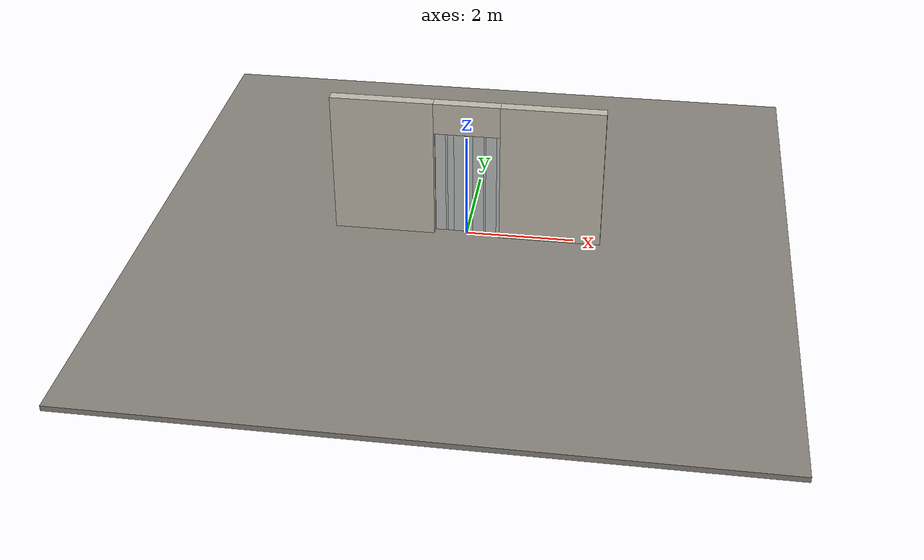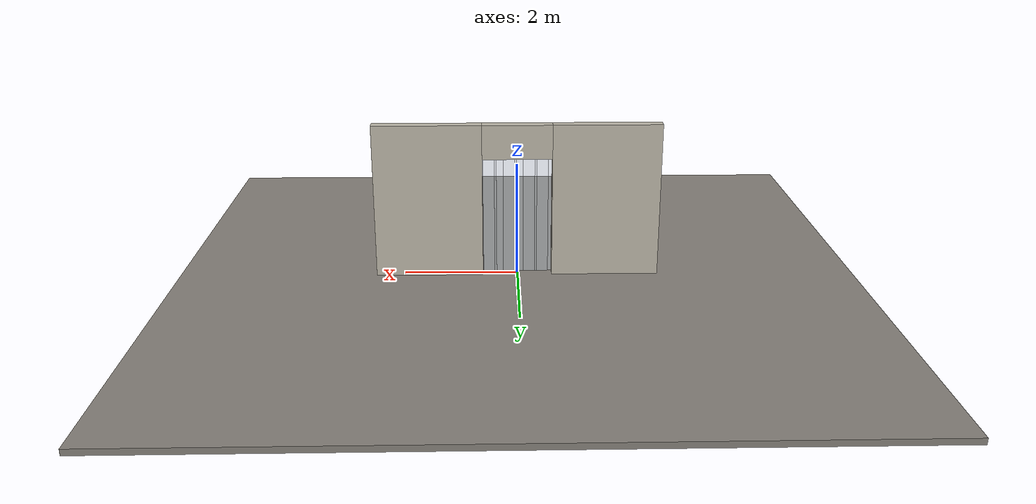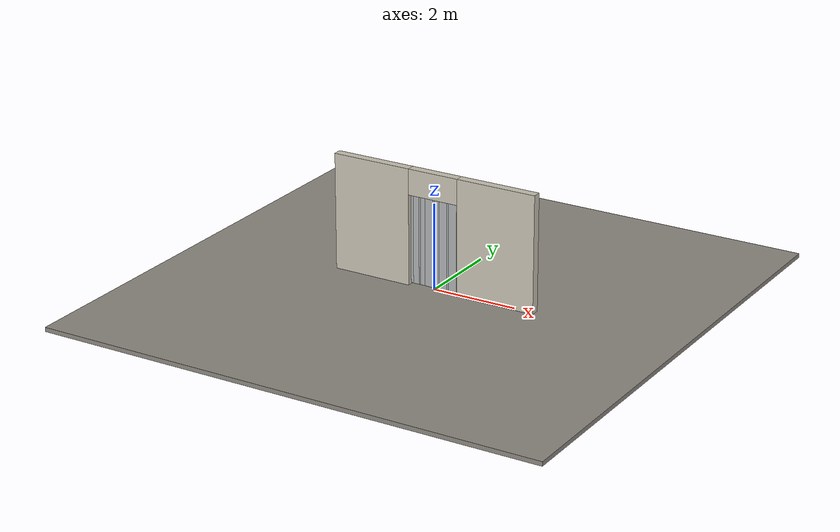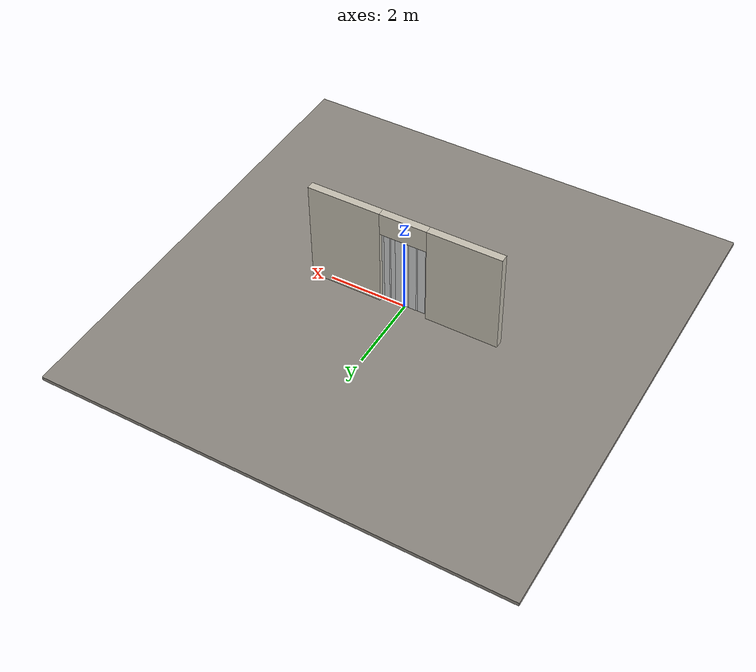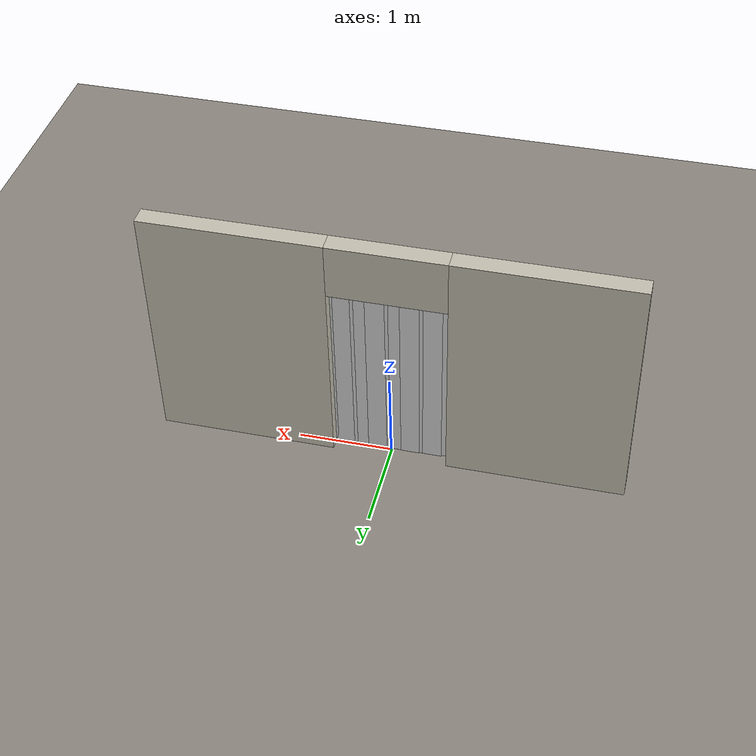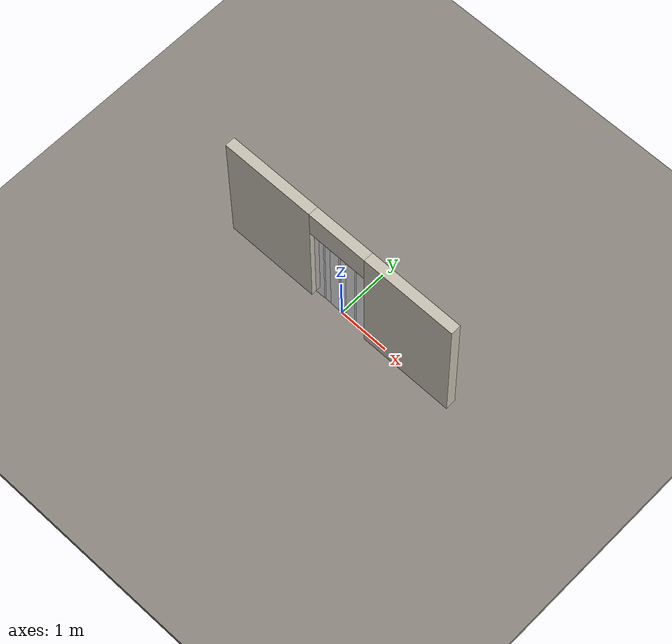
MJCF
<?xml version="1.0" ?>
<mujoco model="db0628_strip_curtain_simple">
  <compiler angle="radian" meshdir="../../hardware" texturedir="../../textures" autolimits="true" inertiafromgeom="false"/>
  <option timestep="0.002" integrator="implicitfast" cone="elliptic" impratio="10" noslip_iterations="3">
    <flag multiccd="enable"/>
  </option>
  <size memory="16M"/>
  <default>
    <geom condim="4" solref="0.005 1" solimp="0.95 0.99 0.001"/>
    <joint solreflimit="0.005 1" solimplimit="0.95 0.99 0.001"/>
    <tendon solreflimit="0.005 1"/>
    <equality solref="0.002 1"/>
  </default>
  <visual>
    <headlight ambient="0.4 0.4 0.4" diffuse="0.7 0.7 0.7" specular="0.2 0.2 0.2"/>
    <quality shadowsize="4096"/>
    <map znear="0.01" zfar="60"/>
  </visual>
  <asset>
    <material name="mat_floor" rgba="0.55 0.53 0.5 1" specular="0.2" shininess="0.15" reflectance="0"/>
    <material name="mat_wall" rgba="0.78 0.76 0.7 1" specular="0.2" shininess="0.1" reflectance="0"/>
    <material name="mat_frame" rgba="0.75 0.76 0.77 1" specular="0.8" shininess="0.65" reflectance="0.4"/>
    <material name="mat_strip" rgba="0.85 0.9 0.95 0.45" specular="0.2" shininess="0.7" reflectance="0.1"/>
    <texture name="skybox" type="skybox" builtin="gradient" rgb1="0.6 0.7 0.85" rgb2="0.9 0.92 0.95" width="256" height="256"/>
  </asset>
  <worldbody>
    <light name="sun" pos="1.5 -2.5 4" dir="-0.3 0.5 -0.8" directional="true" diffuse="0.8 0.8 0.8" specular="0.3 0.3 0.3" castshadow="true"/>
    <light name="fill" pos="-1.5 2.5 3" dir="0.3 -0.5 -0.7" directional="true" diffuse="0.35 0.35 0.4" castshadow="false"/>
    <camera name="robot_view" pos="0 -2.6125 1.7915" xyaxes="1 0 0 0 0.26963 0.962964" fovy="52"/>
    <camera name="far_view" pos="0 2.6125 1.7915" xyaxes="-1 0 0 0 -0.26963 0.962964" fovy="52"/>
    <camera name="iso" pos="1.9855 -2.1945 2.2095" xyaxes="0.741536 0.670913 0 -0.242917 0.268487 0.932151" fovy="46"/>
    <camera name="detail_handle" pos="0.48 -0.8 1.28" xyaxes="0.97561 0.219512 0 -0.070934 0.315262 0.94635" fovy="38"/>
    <geom name="floor" type="box" size="6 6 0.05" pos="0 0 -0.05" material="mat_floor" group="0" contype="1" conaffinity="1" friction="0.8 0.005 0.0001" density="2400"/>
    <geom name="wall_left" type="box" size="0.945 0.1 1.36" pos="-1.555 0 1.36" material="mat_wall" group="0" contype="1" conaffinity="1" friction="0.6 0.005 0.0001" density="800"/>
    <geom name="wall_right" type="box" size="0.945 0.1 1.36" pos="1.555 0 1.36" material="mat_wall" group="0" contype="1" conaffinity="1" friction="0.6 0.005 0.0001" density="800"/>
    <geom name="wall_header" type="box" size="0.61 0.1 0.3" pos="0 0 2.42" material="mat_wall" group="0" contype="1" conaffinity="1" friction="0.6 0.005 0.0001" density="800"/>
    <geom name="hanger_rail" type="box" size="0.66 0.03 0.03" pos="0 0 2.15" material="mat_frame" group="0" contype="1" conaffinity="1" friction="0.6 0.005 0.0001" density="7900"/>
    <geom name="strip_0_hanger" type="box" size="0.1 0.0055 0.0145" pos="-0.5 -0.0085 2.1275" material="mat_frame" group="1" contype="0" conaffinity="0" density="7900"/>
    <geom name="strip_1_hanger" type="box" size="0.1 0.0055 0.0145" pos="-0.441176 0.0035 2.1275" material="mat_frame" group="1" contype="0" conaffinity="0" density="7900"/>
    <geom name="strip_2_hanger" type="box" size="0.1 0.0055 0.0145" pos="-0.382353 0.0015 2.1275" material="mat_frame" group="1" contype="0" conaffinity="0" density="7900"/>
    <geom name="strip_3_hanger" type="box" size="0.1 0.0055 0.0145" pos="-0.323529 -0.0015 2.1275" material="mat_frame" group="1" contype="0" conaffinity="0" density="7900"/>
    <geom name="strip_4_hanger" type="box" size="0.1 0.0055 0.0145" pos="-0.264706 -0.0035 2.1275" material="mat_frame" group="1" contype="0" conaffinity="0" density="7900"/>
    <geom name="strip_5_hanger" type="box" size="0.1 0.0055 0.0145" pos="-0.205882 0.0085 2.1275" material="mat_frame" group="1" contype="0" conaffinity="0" density="7900"/>
    <geom name="strip_6_hanger" type="box" size="0.1 0.0055 0.0145" pos="-0.147059 -0.0085 2.1275" material="mat_frame" group="1" contype="0" conaffinity="0" density="7900"/>
    <geom name="strip_7_hanger" type="box" size="0.1 0.0055 0.0145" pos="-0.088235 0.0035 2.1275" material="mat_frame" group="1" contype="0" conaffinity="0" density="7900"/>
    <geom name="strip_8_hanger" type="box" size="0.1 0.0055 0.0145" pos="-0.029412 0.0015 2.1275" material="mat_frame" group="1" contype="0" conaffinity="0" density="7900"/>
    <geom name="strip_9_hanger" type="box" size="0.1 0.0055 0.0145" pos="0.029412 -0.0015 2.1275" material="mat_frame" group="1" contype="0" conaffinity="0" density="7900"/>
    <geom name="strip_10_hanger" type="box" size="0.1 0.0055 0.0145" pos="0.088235 -0.0035 2.1275" material="mat_frame" group="1" contype="0" conaffinity="0" density="7900"/>
    <geom name="strip_11_hanger" type="box" size="0.1 0.0055 0.0145" pos="0.147059 0.0085 2.1275" material="mat_frame" group="1" contype="0" conaffinity="0" density="7900"/>
    <geom name="strip_12_hanger" type="box" size="0.1 0.0055 0.0145" pos="0.205882 -0.0085 2.1275" material="mat_frame" group="1" contype="0" conaffinity="0" density="7900"/>
    <geom name="strip_13_hanger" type="box" size="0.1 0.0055 0.0145" pos="0.264706 0.0035 2.1275" material="mat_frame" group="1" contype="0" conaffinity="0" density="7900"/>
    <geom name="strip_14_hanger" type="box" size="0.1 0.0055 0.0145" pos="0.323529 0.0015 2.1275" material="mat_frame" group="1" contype="0" conaffinity="0" density="7900"/>
    <geom name="strip_15_hanger" type="box" size="0.1 0.0055 0.0145" pos="0.382353 -0.0015 2.1275" material="mat_frame" group="1" contype="0" conaffinity="0" density="7900"/>
    <geom name="strip_16_hanger" type="box" size="0.1 0.0055 0.0145" pos="0.441176 -0.0035 2.1275" material="mat_frame" group="1" contype="0" conaffinity="0" density="7900"/>
    <geom name="strip_17_hanger" type="box" size="0.1 0.0055 0.0145" pos="0.5 0.0085 2.1275" material="mat_frame" group="1" contype="0" conaffinity="0" density="7900"/>
    <site name="approach_point" pos="0 -1.5 0" quat="1 0 0 0" size="0.05" rgba="0.2 0.9 0.2 0.5" group="4"/>
    <site name="goal_point" pos="0 1.5 0" quat="1 0 0 0" size="0.05" rgba="0.2 0.9 0.2 0.5" group="4"/>
    <site name="door_plane_center" pos="0 0 1.06" quat="1 0 0 0" size="0.02" rgba="0.2 0.9 0.2 0.5" group="4"/>
    <body name="strip_0" pos="-0.5 -0.0085 2.114">
      <inertial pos="0 0 -1.04" mass="1.621111" quat="-0.5 0.5 0.5 0.5" diaginertia="0.00540492 0.584465808 0.589868296"/>
      <joint name="strip_0_hinge" type="hinge" axis="1 0 0" limited="true" range="-1.48353 1.48353" damping="0.05" frictionloss="0.02" armature="0.005"/>
      <geom name="strip_0_geom" type="box" size="0.1 0.0015 1.04" pos="0 0 -1.04" material="mat_strip" group="0" contype="1" conaffinity="1" friction="0.6 0.005 0.0001" density="1250"/>
    </body>
    <body name="strip_1" pos="-0.441176 0.0035 2.114">
      <inertial pos="0 0 -1.04" mass="1.621111" quat="-0.5 0.5 0.5 0.5" diaginertia="0.00540492 0.584465808 0.589868296"/>
      <joint name="strip_1_hinge" type="hinge" axis="1 0 0" limited="true" range="-1.48353 1.48353" damping="0.05" frictionloss="0.02" armature="0.005"/>
      <geom name="strip_1_geom" type="box" size="0.1 0.0015 1.04" pos="0 0 -1.04" material="mat_strip" group="0" contype="1" conaffinity="1" friction="0.6 0.005 0.0001" density="1250"/>
    </body>
    <body name="strip_2" pos="-0.382353 0.0015 2.114">
      <inertial pos="0 0 -1.04" mass="1.621111" quat="-0.5 0.5 0.5 0.5" diaginertia="0.00540492 0.584465808 0.589868296"/>
      <joint name="strip_2_hinge" type="hinge" axis="1 0 0" limited="true" range="-1.48353 1.48353" damping="0.05" frictionloss="0.02" armature="0.005"/>
      <geom name="strip_2_geom" type="box" size="0.1 0.0015 1.04" pos="0 0 -1.04" material="mat_strip" group="0" contype="1" conaffinity="1" friction="0.6 0.005 0.0001" density="1250"/>
    </body>
    <body name="strip_3" pos="-0.323529 -0.0015 2.114">
      <inertial pos="0 0 -1.04" mass="1.621111" quat="-0.5 0.5 0.5 0.5" diaginertia="0.00540492 0.584465808 0.589868296"/>
      <joint name="strip_3_hinge" type="hinge" axis="1 0 0" limited="true" range="-1.48353 1.48353" damping="0.05" frictionloss="0.02" armature="0.005"/>
      <geom name="strip_3_geom" type="box" size="0.1 0.0015 1.04" pos="0 0 -1.04" material="mat_strip" group="0" contype="1" conaffinity="1" friction="0.6 0.005 0.0001" density="1250"/>
    </body>
    <body name="strip_4" pos="-0.264706 -0.0035 2.114">
      <inertial pos="0 0 -1.04" mass="1.621111" quat="-0.5 0.5 0.5 0.5" diaginertia="0.00540492 0.584465808 0.589868296"/>
      <joint name="strip_4_hinge" type="hinge" axis="1 0 0" limited="true" range="-1.48353 1.48353" damping="0.05" frictionloss="0.02" armature="0.005"/>
      <geom name="strip_4_geom" type="box" size="0.1 0.0015 1.04" pos="0 0 -1.04" material="mat_strip" group="0" contype="1" conaffinity="1" friction="0.6 0.005 0.0001" density="1250"/>
    </body>
    <body name="strip_5" pos="-0.205882 0.0085 2.114">
      <inertial pos="0 0 -1.04" mass="1.621111" quat="-0.5 0.5 0.5 0.5" diaginertia="0.00540492 0.584465808 0.589868296"/>
      <joint name="strip_5_hinge" type="hinge" axis="1 0 0" limited="true" range="-1.48353 1.48353" damping="0.05" frictionloss="0.02" armature="0.005"/>
      <geom name="strip_5_geom" type="box" size="0.1 0.0015 1.04" pos="0 0 -1.04" material="mat_strip" group="0" contype="1" conaffinity="1" friction="0.6 0.005 0.0001" density="1250"/>
    </body>
    <body name="strip_6" pos="-0.147059 -0.0085 2.114">
      <inertial pos="0 0 -1.04" mass="1.621111" quat="-0.5 0.5 0.5 0.5" diaginertia="0.00540492 0.584465808 0.589868296"/>
      <joint name="strip_6_hinge" type="hinge" axis="1 0 0" limited="true" range="-1.48353 1.48353" damping="0.05" frictionloss="0.02" armature="0.005"/>
      <geom name="strip_6_geom" type="box" size="0.1 0.0015 1.04" pos="0 0 -1.04" material="mat_strip" group="0" contype="1" conaffinity="1" friction="0.6 0.005 0.0001" density="1250"/>
    </body>
    <body name="strip_7" pos="-0.088235 0.0035 2.114">
      <inertial pos="0 0 -1.04" mass="1.621111" quat="-0.5 0.5 0.5 0.5" diaginertia="0.00540492 0.584465808 0.589868296"/>
      <joint name="strip_7_hinge" type="hinge" axis="1 0 0" limited="true" range="-1.48353 1.48353" damping="0.05" frictionloss="0.02" armature="0.005"/>
      <geom name="strip_7_geom" type="box" size="0.1 0.0015 1.04" pos="0 0 -1.04" material="mat_strip" group="0" contype="1" conaffinity="1" friction="0.6 0.005 0.0001" density="1250"/>
    </body>
    <body name="strip_8" pos="-0.029412 0.0015 2.114">
      <inertial pos="0 0 -1.04" mass="1.621111" quat="-0.5 0.5 0.5 0.5" diaginertia="0.00540492 0.584465808 0.589868296"/>
      <joint name="strip_8_hinge" type="hinge" axis="1 0 0" limited="true" range="-1.48353 1.48353" damping="0.05" frictionloss="0.02" armature="0.005"/>
      <geom name="strip_8_geom" type="box" size="0.1 0.0015 1.04" pos="0 0 -1.04" material="mat_strip" group="0" contype="1" conaffinity="1" friction="0.6 0.005 0.0001" density="1250"/>
    </body>
    <body name="strip_9" pos="0.029412 -0.0015 2.114">
      <inertial pos="0 0 -1.04" mass="1.621111" quat="-0.5 0.5 0.5 0.5" diaginertia="0.00540492 0.584465808 0.589868296"/>
      <joint name="strip_9_hinge" type="hinge" axis="1 0 0" limited="true" range="-1.48353 1.48353" damping="0.05" frictionloss="0.02" armature="0.02"/>
      <geom name="strip_9_geom" type="box" size="0.1 0.0015 1.04" pos="0 0 -1.04" material="mat_strip" group="0" contype="1" conaffinity="1" friction="0.6 0.005 0.0001" density="1250"/>
    </body>
    <body name="strip_10" pos="0.088235 -0.0035 2.114">
      <inertial pos="0 0 -1.04" mass="1.621111" quat="-0.5 0.5 0.5 0.5" diaginertia="0.00540492 0.584465808 0.589868296"/>
      <joint name="strip_10_hinge" type="hinge" axis="1 0 0" limited="true" range="-1.48353 1.48353" damping="0.05" frictionloss="0.02" armature="0.005"/>
      <geom name="strip_10_geom" type="box" size="0.1 0.0015 1.04" pos="0 0 -1.04" material="mat_strip" group="0" contype="1" conaffinity="1" friction="0.6 0.005 0.0001" density="1250"/>
    </body>
    <body name="strip_11" pos="0.147059 0.0085 2.114">
      <inertial pos="0 0 -1.04" mass="1.621111" quat="-0.5 0.5 0.5 0.5" diaginertia="0.00540492 0.584465808 0.589868296"/>
      <joint name="strip_11_hinge" type="hinge" axis="1 0 0" limited="true" range="-1.48353 1.48353" damping="0.05" frictionloss="0.02" armature="0.005"/>
      <geom name="strip_11_geom" type="box" size="0.1 0.0015 1.04" pos="0 0 -1.04" material="mat_strip" group="0" contype="1" conaffinity="1" friction="0.6 0.005 0.0001" density="1250"/>
    </body>
    <body name="strip_12" pos="0.205882 -0.0085 2.114">
      <inertial pos="0 0 -1.04" mass="1.621111" quat="-0.5 0.5 0.5 0.5" diaginertia="0.00540492 0.584465808 0.589868296"/>
      <joint name="strip_12_hinge" type="hinge" axis="1 0 0" limited="true" range="-1.48353 1.48353" damping="0.05" frictionloss="0.02" armature="0.005"/>
      <geom name="strip_12_geom" type="box" size="0.1 0.0015 1.04" pos="0 0 -1.04" material="mat_strip" group="0" contype="1" conaffinity="1" friction="0.6 0.005 0.0001" density="1250"/>
    </body>
    <body name="strip_13" pos="0.264706 0.0035 2.114">
      <inertial pos="0 0 -1.04" mass="1.621111" quat="-0.5 0.5 0.5 0.5" diaginertia="0.00540492 0.584465808 0.589868296"/>
      <joint name="strip_13_hinge" type="hinge" axis="1 0 0" limited="true" range="-1.48353 1.48353" damping="0.05" frictionloss="0.02" armature="0.005"/>
      <geom name="strip_13_geom" type="box" size="0.1 0.0015 1.04" pos="0 0 -1.04" material="mat_strip" group="0" contype="1" conaffinity="1" friction="0.6 0.005 0.0001" density="1250"/>
    </body>
    <body name="strip_14" pos="0.323529 0.0015 2.114">
      <inertial pos="0 0 -1.04" mass="1.621111" quat="-0.5 0.5 0.5 0.5" diaginertia="0.00540492 0.584465808 0.589868296"/>
      <joint name="strip_14_hinge" type="hinge" axis="1 0 0" limited="true" range="-1.48353 1.48353" damping="0.05" frictionloss="0.02" armature="0.005"/>
      <geom name="strip_14_geom" type="box" size="0.1 0.0015 1.04" pos="0 0 -1.04" material="mat_strip" group="0" contype="1" conaffinity="1" friction="0.6 0.005 0.0001" density="1250"/>
    </body>
    <body name="strip_15" pos="0.382353 -0.0015 2.114">
      <inertial pos="0 0 -1.04" mass="1.621111" quat="-0.5 0.5 0.5 0.5" diaginertia="0.00540492 0.584465808 0.589868296"/>
      <joint name="strip_15_hinge" type="hinge" axis="1 0 0" limited="true" range="-1.48353 1.48353" damping="0.05" frictionloss="0.02" armature="0.005"/>
      <geom name="strip_15_geom" type="box" size="0.1 0.0015 1.04" pos="0 0 -1.04" material="mat_strip" group="0" contype="1" conaffinity="1" friction="0.6 0.005 0.0001" density="1250"/>
    </body>
    <body name="strip_16" pos="0.441176 -0.0035 2.114">
      <inertial pos="0 0 -1.04" mass="1.621111" quat="-0.5 0.5 0.5 0.5" diaginertia="0.00540492 0.584465808 0.589868296"/>
      <joint name="strip_16_hinge" type="hinge" axis="1 0 0" limited="true" range="-1.48353 1.48353" damping="0.05" frictionloss="0.02" armature="0.005"/>
      <geom name="strip_16_geom" type="box" size="0.1 0.0015 1.04" pos="0 0 -1.04" material="mat_strip" group="0" contype="1" conaffinity="1" friction="0.6 0.005 0.0001" density="1250"/>
    </body>
    <body name="strip_17" pos="0.5 0.0085 2.114">
      <inertial pos="0 0 -1.04" mass="1.621111" quat="-0.5 0.5 0.5 0.5" diaginertia="0.00540492 0.584465808 0.589868296"/>
      <joint name="strip_17_hinge" type="hinge" axis="1 0 0" limited="true" range="-1.48353 1.48353" damping="0.05" frictionloss="0.02" armature="0.005"/>
      <geom name="strip_17_geom" type="box" size="0.1 0.0015 1.04" pos="0 0 -1.04" material="mat_strip" group="0" contype="1" conaffinity="1" friction="0.6 0.005 0.0001" density="1250"/>
    </body>
  </worldbody>
  <contact>
    <exclude body1="strip_1" body2="strip_0"/>
    <exclude body1="strip_2" body2="strip_1"/>
    <exclude body1="strip_3" body2="strip_2"/>
    <exclude body1="strip_4" body2="strip_3"/>
    <exclude body1="strip_5" body2="strip_4"/>
    <exclude body1="strip_6" body2="strip_5"/>
    <exclude body1="strip_7" body2="strip_6"/>
    <exclude body1="strip_8" body2="strip_7"/>
    <exclude body1="strip_9" body2="strip_8"/>
    <exclude body1="strip_10" body2="strip_9"/>
    <exclude body1="strip_11" body2="strip_10"/>
    <exclude body1="strip_12" body2="strip_11"/>
    <exclude body1="strip_13" body2="strip_12"/>
    <exclude body1="strip_14" body2="strip_13"/>
    <exclude body1="strip_15" body2="strip_14"/>
    <exclude body1="strip_16" body2="strip_15"/>
    <exclude body1="strip_17" body2="strip_16"/>
  </contact>
  <sensor>
    <jointpos name="strip_0_hinge_pos" joint="strip_0_hinge"/>
    <jointvel name="strip_0_hinge_vel" joint="strip_0_hinge"/>
    <jointpos name="strip_1_hinge_pos" joint="strip_1_hinge"/>
    <jointvel name="strip_1_hinge_vel" joint="strip_1_hinge"/>
    <jointpos name="strip_2_hinge_pos" joint="strip_2_hinge"/>
    <jointvel name="strip_2_hinge_vel" joint="strip_2_hinge"/>
    <jointpos name="strip_3_hinge_pos" joint="strip_3_hinge"/>
    <jointvel name="strip_3_hinge_vel" joint="strip_3_hinge"/>
    <jointpos name="strip_4_hinge_pos" joint="strip_4_hinge"/>
    <jointvel name="strip_4_hinge_vel" joint="strip_4_hinge"/>
    <jointpos name="strip_5_hinge_pos" joint="strip_5_hinge"/>
    <jointvel name="strip_5_hinge_vel" joint="strip_5_hinge"/>
    <jointpos name="strip_6_hinge_pos" joint="strip_6_hinge"/>
    <jointvel name="strip_6_hinge_vel" joint="strip_6_hinge"/>
    <jointpos name="strip_7_hinge_pos" joint="strip_7_hinge"/>
    <jointvel name="strip_7_hinge_vel" joint="strip_7_hinge"/>
    <jointpos name="strip_8_hinge_pos" joint="strip_8_hinge"/>
    <jointvel name="strip_8_hinge_vel" joint="strip_8_hinge"/>
    <jointpos name="strip_9_hinge_pos" joint="strip_9_hinge"/>
    <jointvel name="strip_9_hinge_vel" joint="strip_9_hinge"/>
    <jointpos name="strip_10_hinge_pos" joint="strip_10_hinge"/>
    <jointvel name="strip_10_hinge_vel" joint="strip_10_hinge"/>
    <jointpos name="strip_11_hinge_pos" joint="strip_11_hinge"/>
    <jointvel name="strip_11_hinge_vel" joint="strip_11_hinge"/>
    <jointpos name="strip_12_hinge_pos" joint="strip_12_hinge"/>
    <jointvel name="strip_12_hinge_vel" joint="strip_12_hinge"/>
    <jointpos name="strip_13_hinge_pos" joint="strip_13_hinge"/>
    <jointvel name="strip_13_hinge_vel" joint="strip_13_hinge"/>
    <jointpos name="strip_14_hinge_pos" joint="strip_14_hinge"/>
    <jointvel name="strip_14_hinge_vel" joint="strip_14_hinge"/>
    <jointpos name="strip_15_hinge_pos" joint="strip_15_hinge"/>
    <jointvel name="strip_15_hinge_vel" joint="strip_15_hinge"/>
    <jointpos name="strip_16_hinge_pos" joint="strip_16_hinge"/>
    <jointvel name="strip_16_hinge_vel" joint="strip_16_hinge"/>
    <jointpos name="strip_17_hinge_pos" joint="strip_17_hinge"/>
    <jointvel name="strip_17_hinge_vel" joint="strip_17_hinge"/>
  </sensor>
</mujoco>
